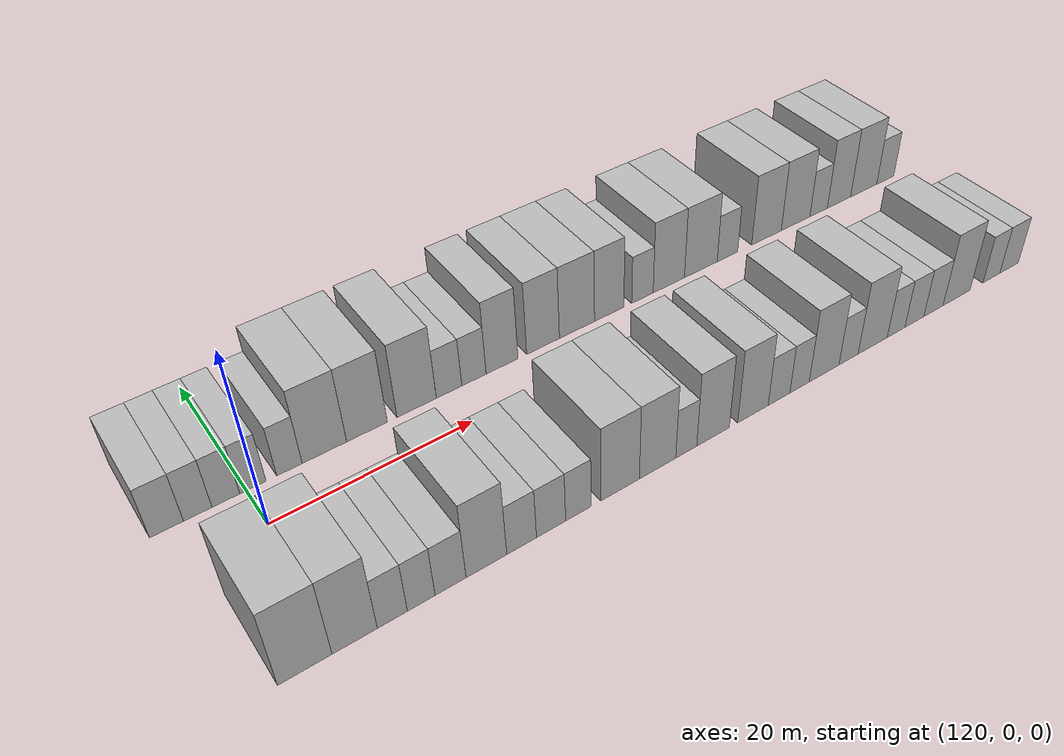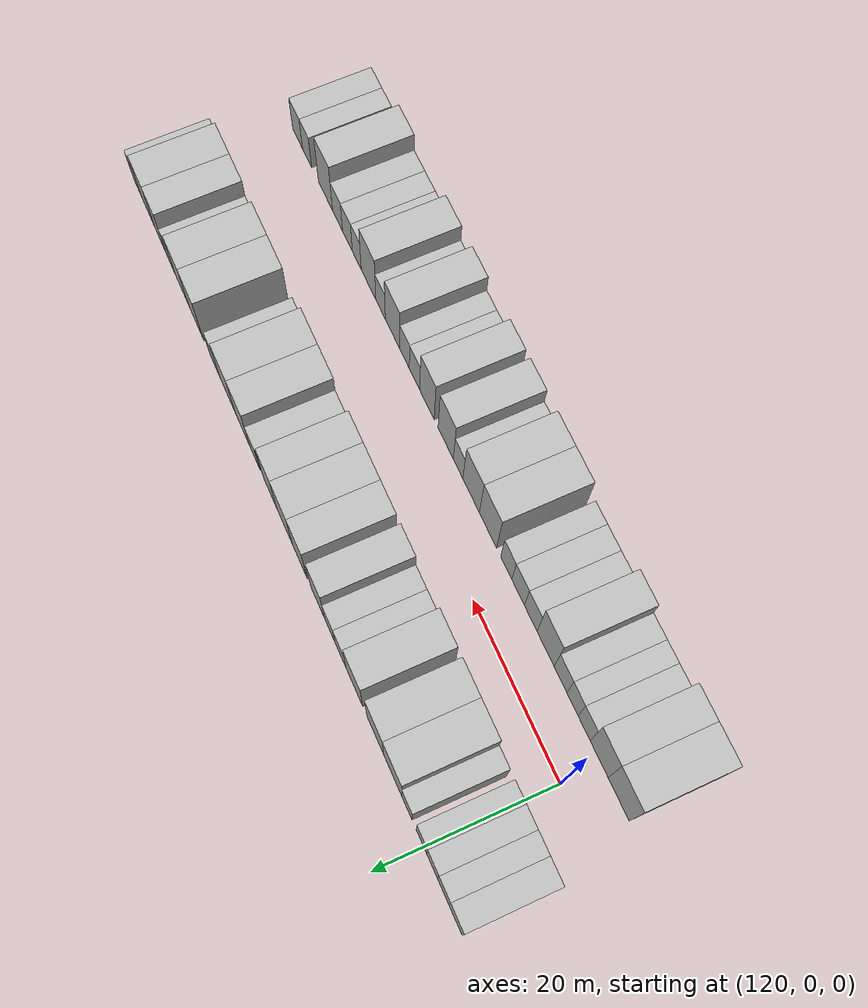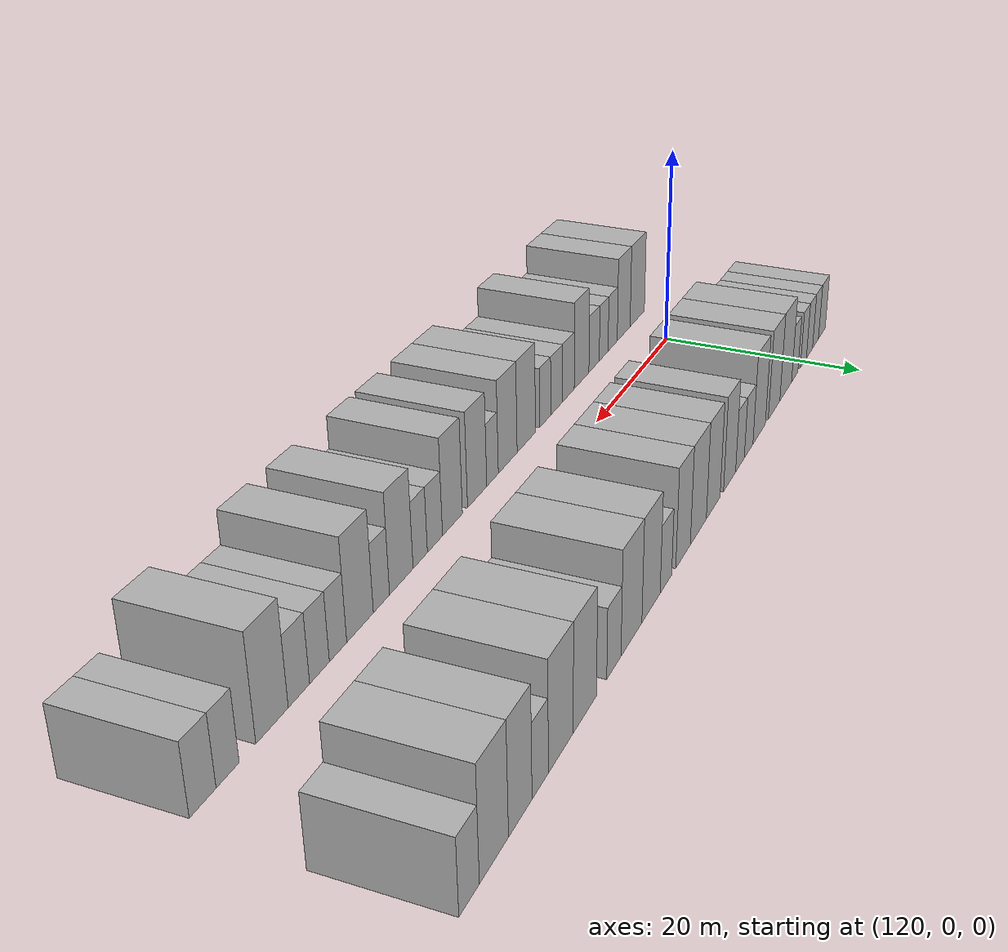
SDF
<sdf version="1.6">
 <world name="default">
  <model name="building_25">
   <static>1</static>
   <pose>112.8663 9.5000 0 0.000000 0.000000 1.570796</pose>
   <link name="link">
    <pose>0 0 3.00 0 0 0</pose>
    <collision name="collision"><geometry><box><size>10.0000 2.9402 6.0000</size></box></geometry></collision>
    <visual name="visual">
     <cast_shadows>0</cast_shadows>
     <geometry><box><size>10.0000 2.9402 6.0000</size></box></geometry>
     <material>
      <script>
       <uri>model://HANNAS_wall/materials/scripts</uri>
       <uri>model://HANNAS_wall/materials/textures</uri>
       <name>vrc/HANNAS_wall</name>
      </script>
     </material>
    </visual>
   </link>
  </model>
  <model name="building_26">
   <static>1</static>
   <pose>115.5956 9.5000 0 0.000000 0.000000 1.570796</pose>
   <link name="link">
    <pose>0 0 3.00 0 0 0</pose>
    <collision name="collision"><geometry><box><size>10.0000 2.5184 6.0000</size></box></geometry></collision>
    <visual name="visual">
     <cast_shadows>0</cast_shadows>
     <geometry><box><size>10.0000 2.5184 6.0000</size></box></geometry>
     <material>
      <script>
       <uri>model://HANNAS_wall/materials/scripts</uri>
       <uri>model://HANNAS_wall/materials/textures</uri>
       <name>vrc/HANNAS_wall</name>
      </script>
     </material>
    </visual>
   </link>
  </model>
  <model name="building_27">
   <static>1</static>
   <pose>118.1080 9.5000 0 0.000000 0.000000 1.570796</pose>
   <link name="link">
    <pose>0 0 3.00 0 0 0</pose>
    <collision name="collision"><geometry><box><size>10.0000 2.5065 6.0000</size></box></geometry></collision>
    <visual name="visual">
     <cast_shadows>0</cast_shadows>
     <geometry><box><size>10.0000 2.5065 6.0000</size></box></geometry>
     <material>
      <script>
       <uri>model://HANNAS_wall/materials/scripts</uri>
       <uri>model://HANNAS_wall/materials/textures</uri>
       <name>vrc/HANNAS_wall</name>
      </script>
     </material>
    </visual>
   </link>
  </model>
  <model name="building_28">
   <static>1</static>
   <pose>120.5743 9.5000 0 0.000000 0.000000 1.570796</pose>
   <link name="link">
    <pose>0 0 3.00 0 0 0</pose>
    <collision name="collision"><geometry><box><size>10.0000 2.4260 6.0000</size></box></geometry></collision>
    <visual name="visual">
     <cast_shadows>0</cast_shadows>
     <geometry><box><size>10.0000 2.4260 6.0000</size></box></geometry>
     <material>
      <script>
       <uri>model://HANNAS_wall/materials/scripts</uri>
       <uri>model://HANNAS_wall/materials/textures</uri>
       <name>vrc/HANNAS_wall</name>
      </script>
     </material>
    </visual>
   </link>
  </model>
  <model name="building_29">
   <static>1</static>
   <pose>123.9960 9.5000 0 0.000000 0.000000 1.570796</pose>
   <link name="link">
    <pose>0 0 3.00 0 0 0</pose>
    <collision name="collision"><geometry><box><size>10.0000 2.4174 6.0000</size></box></geometry></collision>
    <visual name="visual">
     <cast_shadows>0</cast_shadows>
     <geometry><box><size>10.0000 2.4174 6.0000</size></box></geometry>
     <material>
      <script>
       <uri>model://HANNAS_wall/materials/scripts</uri>
       <uri>model://HANNAS_wall/materials/textures</uri>
       <name>vrc/HANNAS_wall</name>
      </script>
     </material>
    </visual>
   </link>
  </model>
  <model name="building_30">
   <static>1</static>
   <pose>127.3766 9.5000 0 0.000000 0.000000 1.570796</pose>
   <link name="link">
    <pose>0 0 4.50 0 0 0</pose>
    <collision name="collision"><geometry><box><size>10.0000 4.3437 9.0000</size></box></geometry></collision>
    <visual name="visual">
     <cast_shadows>0</cast_shadows>
     <geometry><box><size>10.0000 4.3437 9.0000</size></box></geometry>
     <material>
      <script>
       <uri>model://HANNAS_wall/materials/scripts</uri>
       <uri>model://HANNAS_wall/materials/textures</uri>
       <name>vrc/HANNAS_wall</name>
      </script>
     </material>
    </visual>
   </link>
  </model>
  <model name="building_31">
   <static>1</static>
   <pose>131.6081 9.5000 0 0.000000 0.000000 1.570796</pose>
   <link name="link">
    <pose>0 0 4.50 0 0 0</pose>
    <collision name="collision"><geometry><box><size>10.0000 4.1194 9.0000</size></box></geometry></collision>
    <visual name="visual">
     <cast_shadows>0</cast_shadows>
     <geometry><box><size>10.0000 4.1194 9.0000</size></box></geometry>
     <material>
      <script>
       <uri>model://HANNAS_wall/materials/scripts</uri>
       <uri>model://HANNAS_wall/materials/textures</uri>
       <name>vrc/HANNAS_wall</name>
      </script>
     </material>
    </visual>
   </link>
  </model>
  <model name="building_32">
   <static>1</static>
   <pose>136.7439 9.5000 0 0.000000 0.000000 1.570796</pose>
   <link name="link">
    <pose>0 0 4.50 0 0 0</pose>
    <collision name="collision"><geometry><box><size>10.0000 4.1521 9.0000</size></box></geometry></collision>
    <visual name="visual">
     <cast_shadows>0</cast_shadows>
     <geometry><box><size>10.0000 4.1521 9.0000</size></box></geometry>
     <material>
      <script>
       <uri>model://HANNAS_wall/materials/scripts</uri>
       <uri>model://HANNAS_wall/materials/textures</uri>
       <name>vrc/HANNAS_wall</name>
      </script>
     </material>
    </visual>
   </link>
  </model>
  <model name="building_33">
   <static>1</static>
   <pose>140.2035 9.5000 0 0.000000 0.000000 1.570796</pose>
   <link name="link">
    <pose>0 0 3.00 0 0 0</pose>
    <collision name="collision"><geometry><box><size>10.0000 2.7670 6.0000</size></box></geometry></collision>
    <visual name="visual">
     <cast_shadows>0</cast_shadows>
     <geometry><box><size>10.0000 2.7670 6.0000</size></box></geometry>
     <material>
      <script>
       <uri>model://HANNAS_wall/materials/scripts</uri>
       <uri>model://HANNAS_wall/materials/textures</uri>
       <name>vrc/HANNAS_wall</name>
      </script>
     </material>
    </visual>
   </link>
  </model>
  <model name="building_34">
   <static>1</static>
   <pose>142.9331 9.5000 0 0.000000 0.000000 1.570796</pose>
   <link name="link">
    <pose>0 0 3.00 0 0 0</pose>
    <collision name="collision"><geometry><box><size>10.0000 2.6923 6.0000</size></box></geometry></collision>
    <visual name="visual">
     <cast_shadows>0</cast_shadows>
     <geometry><box><size>10.0000 2.6923 6.0000</size></box></geometry>
     <material>
      <script>
       <uri>model://HANNAS_wall/materials/scripts</uri>
       <uri>model://HANNAS_wall/materials/textures</uri>
       <name>vrc/HANNAS_wall</name>
      </script>
     </material>
    </visual>
   </link>
  </model>
  <model name="building_35">
   <static>1</static>
   <pose>146.0884 9.5000 0 0.000000 0.000000 1.570796</pose>
   <link name="link">
    <pose>0 0 4.50 0 0 0</pose>
    <collision name="collision"><geometry><box><size>10.0000 3.6184 9.0000</size></box></geometry></collision>
    <visual name="visual">
     <cast_shadows>0</cast_shadows>
     <geometry><box><size>10.0000 3.6184 9.0000</size></box></geometry>
     <material>
      <script>
       <uri>model://HANNAS_wall/materials/scripts</uri>
       <uri>model://HANNAS_wall/materials/textures</uri>
       <name>vrc/HANNAS_wall</name>
      </script>
     </material>
    </visual>
   </link>
  </model>
  <model name="building_36">
   <static>1</static>
   <pose>150.8325 9.5000 0 0.000000 0.000000 1.570796</pose>
   <link name="link">
    <pose>0 0 4.50 0 0 0</pose>
    <collision name="collision"><geometry><box><size>10.0000 3.8698 9.0000</size></box></geometry></collision>
    <visual name="visual">
     <cast_shadows>0</cast_shadows>
     <geometry><box><size>10.0000 3.8698 9.0000</size></box></geometry>
     <material>
      <script>
       <uri>model://HANNAS_wall/materials/scripts</uri>
       <uri>model://HANNAS_wall/materials/textures</uri>
       <name>vrc/HANNAS_wall</name>
      </script>
     </material>
    </visual>
   </link>
  </model>
  <model name="building_37">
   <static>1</static>
   <pose>154.8978 9.5000 0 0.000000 0.000000 1.570796</pose>
   <link name="link">
    <pose>0 0 4.50 0 0 0</pose>
    <collision name="collision"><geometry><box><size>10.0000 4.2608 9.0000</size></box></geometry></collision>
    <visual name="visual">
     <cast_shadows>0</cast_shadows>
     <geometry><box><size>10.0000 4.2608 9.0000</size></box></geometry>
     <material>
      <script>
       <uri>model://HANNAS_wall/materials/scripts</uri>
       <uri>model://HANNAS_wall/materials/textures</uri>
       <name>vrc/HANNAS_wall</name>
      </script>
     </material>
    </visual>
   </link>
  </model>
  <model name="building_38">
   <static>1</static>
   <pose>158.8710 9.5000 0 0.000000 0.000000 1.570796</pose>
   <link name="link">
    <pose>0 0 4.50 0 0 0</pose>
    <collision name="collision"><geometry><box><size>10.0000 3.6856 9.0000</size></box></geometry></collision>
    <visual name="visual">
     <cast_shadows>0</cast_shadows>
     <geometry><box><size>10.0000 3.6856 9.0000</size></box></geometry>
     <material>
      <script>
       <uri>model://HANNAS_wall/materials/scripts</uri>
       <uri>model://HANNAS_wall/materials/textures</uri>
       <name>vrc/HANNAS_wall</name>
      </script>
     </material>
    </visual>
   </link>
  </model>
  <model name="building_39">
   <static>1</static>
   <pose>163.0970 9.5000 0 0.000000 0.000000 1.570796</pose>
   <link name="link">
    <pose>0 0 3.00 0 0 0</pose>
    <collision name="collision"><geometry><box><size>10.0000 2.7663 6.0000</size></box></geometry></collision>
    <visual name="visual">
     <cast_shadows>0</cast_shadows>
     <geometry><box><size>10.0000 2.7663 6.0000</size></box></geometry>
     <material>
      <script>
       <uri>model://HANNAS_wall/materials/scripts</uri>
       <uri>model://HANNAS_wall/materials/textures</uri>
       <name>vrc/HANNAS_wall</name>
      </script>
     </material>
    </visual>
   </link>
  </model>
  <model name="building_40">
   <static>1</static>
   <pose>166.5538 9.5000 0 0.000000 0.000000 1.570796</pose>
   <link name="link">
    <pose>0 0 4.50 0 0 0</pose>
    <collision name="collision"><geometry><box><size>10.0000 4.1472 9.0000</size></box></geometry></collision>
    <visual name="visual">
     <cast_shadows>0</cast_shadows>
     <geometry><box><size>10.0000 4.1472 9.0000</size></box></geometry>
     <material>
      <script>
       <uri>model://HANNAS_wall/materials/scripts</uri>
       <uri>model://HANNAS_wall/materials/textures</uri>
       <name>vrc/HANNAS_wall</name>
      </script>
     </material>
    </visual>
   </link>
  </model>
  <model name="building_41">
   <static>1</static>
   <pose>170.8617 9.5000 0 0.000000 0.000000 1.570796</pose>
   <link name="link">
    <pose>0 0 4.50 0 0 0</pose>
    <collision name="collision"><geometry><box><size>10.0000 4.4686 9.0000</size></box></geometry></collision>
    <visual name="visual">
     <cast_shadows>0</cast_shadows>
     <geometry><box><size>10.0000 4.4686 9.0000</size></box></geometry>
     <material>
      <script>
       <uri>model://HANNAS_wall/materials/scripts</uri>
       <uri>model://HANNAS_wall/materials/textures</uri>
       <name>vrc/HANNAS_wall</name>
      </script>
     </material>
    </visual>
   </link>
  </model>
  <model name="building_42">
   <static>1</static>
   <pose>174.5383 9.5000 0 0.000000 0.000000 1.570796</pose>
   <link name="link">
    <pose>0 0 3.00 0 0 0</pose>
    <collision name="collision"><geometry><box><size>10.0000 2.8847 6.0000</size></box></geometry></collision>
    <visual name="visual">
     <cast_shadows>0</cast_shadows>
     <geometry><box><size>10.0000 2.8847 6.0000</size></box></geometry>
     <material>
      <script>
       <uri>model://HANNAS_wall/materials/scripts</uri>
       <uri>model://HANNAS_wall/materials/textures</uri>
       <name>vrc/HANNAS_wall</name>
      </script>
     </material>
    </visual>
   </link>
  </model>
  <model name="building_43">
   <static>1</static>
   <pose>180.1375 9.5000 0 0.000000 0.000000 1.570796</pose>
   <link name="link">
    <pose>0 0 4.50 0 0 0</pose>
    <collision name="collision"><geometry><box><size>10.0000 4.3137 9.0000</size></box></geometry></collision>
    <visual name="visual">
     <cast_shadows>0</cast_shadows>
     <geometry><box><size>10.0000 4.3137 9.0000</size></box></geometry>
     <material>
      <script>
       <uri>model://HANNAS_wall/materials/scripts</uri>
       <uri>model://HANNAS_wall/materials/textures</uri>
       <name>vrc/HANNAS_wall</name>
      </script>
     </material>
    </visual>
   </link>
  </model>
  <model name="building_44">
   <static>1</static>
   <pose>184.4437 9.5000 0 0.000000 0.000000 1.570796</pose>
   <link name="link">
    <pose>0 0 4.50 0 0 0</pose>
    <collision name="collision"><geometry><box><size>10.0000 4.2988 9.0000</size></box></geometry></collision>
    <visual name="visual">
     <cast_shadows>0</cast_shadows>
     <geometry><box><size>10.0000 4.2988 9.0000</size></box></geometry>
     <material>
      <script>
       <uri>model://HANNAS_wall/materials/scripts</uri>
       <uri>model://HANNAS_wall/materials/textures</uri>
       <name>vrc/HANNAS_wall</name>
      </script>
     </material>
    </visual>
   </link>
  </model>
  <model name="building_45">
   <static>1</static>
   <pose>187.9334 9.5000 0 0.000000 0.000000 1.570796</pose>
   <link name="link">
    <pose>0 0 3.00 0 0 0</pose>
    <collision name="collision"><geometry><box><size>10.0000 2.6806 6.0000</size></box></geometry></collision>
    <visual name="visual">
     <cast_shadows>0</cast_shadows>
     <geometry><box><size>10.0000 2.6806 6.0000</size></box></geometry>
     <material>
      <script>
       <uri>model://HANNAS_wall/materials/scripts</uri>
       <uri>model://HANNAS_wall/materials/textures</uri>
       <name>vrc/HANNAS_wall</name>
      </script>
     </material>
    </visual>
   </link>
  </model>
  <model name="building_46">
   <static>1</static>
   <pose>191.0996 9.5000 0 0.000000 0.000000 1.570796</pose>
   <link name="link">
    <pose>0 0 4.50 0 0 0</pose>
    <collision name="collision"><geometry><box><size>10.0000 3.6517 9.0000</size></box></geometry></collision>
    <visual name="visual">
     <cast_shadows>0</cast_shadows>
     <geometry><box><size>10.0000 3.6517 9.0000</size></box></geometry>
     <material>
      <script>
       <uri>model://HANNAS_wall/materials/scripts</uri>
       <uri>model://HANNAS_wall/materials/textures</uri>
       <name>vrc/HANNAS_wall</name>
      </script>
     </material>
    </visual>
   </link>
  </model>
  <model name="building_47">
   <static>1</static>
   <pose>195.0288 9.5000 0 0.000000 0.000000 1.570796</pose>
   <link name="link">
    <pose>0 0 4.50 0 0 0</pose>
    <collision name="collision"><geometry><box><size>10.0000 4.2066 9.0000</size></box></geometry></collision>
    <visual name="visual">
     <cast_shadows>0</cast_shadows>
     <geometry><box><size>10.0000 4.2066 9.0000</size></box></geometry>
     <material>
      <script>
       <uri>model://HANNAS_wall/materials/scripts</uri>
       <uri>model://HANNAS_wall/materials/textures</uri>
       <name>vrc/HANNAS_wall</name>
      </script>
     </material>
    </visual>
   </link>
  </model>
  <model name="building_48">
   <static>1</static>
   <pose>198.5337 9.5000 0 0.000000 0.000000 1.570796</pose>
   <link name="link">
    <pose>0 0 3.00 0 0 0</pose>
    <collision name="collision"><geometry><box><size>10.0000 2.8033 6.0000</size></box></geometry></collision>
    <visual name="visual">
     <cast_shadows>0</cast_shadows>
     <geometry><box><size>10.0000 2.8033 6.0000</size></box></geometry>
     <material>
      <script>
       <uri>model://HANNAS_wall/materials/scripts</uri>
       <uri>model://HANNAS_wall/materials/textures</uri>
       <name>vrc/HANNAS_wall</name>
      </script>
     </material>
    </visual>
   </link>
  </model>
  <model name="building_74">
   <static>1</static>
   <pose>116.4520 -9.5000 0 0.000000 0.000000 1.570796</pose>
   <link name="link">
    <pose>0 0 4.50 0 0 0</pose>
    <collision name="collision"><geometry><box><size>10.0000 4.4713 9.0000</size></box></geometry></collision>
    <visual name="visual">
     <cast_shadows>0</cast_shadows>
     <geometry><box><size>10.0000 4.4713 9.0000</size></box></geometry>
     <material>
      <script>
       <uri>model://HANNAS_wall/materials/scripts</uri>
       <uri>model://HANNAS_wall/materials/textures</uri>
       <name>vrc/HANNAS_wall</name>
      </script>
     </material>
    </visual>
   </link>
  </model>
  <model name="building_75">
   <static>1</static>
   <pose>120.6215 -9.5000 0 0.000000 0.000000 1.570796</pose>
   <link name="link">
    <pose>0 0 4.50 0 0 0</pose>
    <collision name="collision"><geometry><box><size>10.0000 3.8678 9.0000</size></box></geometry></collision>
    <visual name="visual">
     <cast_shadows>0</cast_shadows>
     <geometry><box><size>10.0000 3.8678 9.0000</size></box></geometry>
     <material>
      <script>
       <uri>model://HANNAS_wall/materials/scripts</uri>
       <uri>model://HANNAS_wall/materials/textures</uri>
       <name>vrc/HANNAS_wall</name>
      </script>
     </material>
    </visual>
   </link>
  </model>
  <model name="building_76">
   <static>1</static>
   <pose>123.8800 -9.5000 0 0.000000 0.000000 1.570796</pose>
   <link name="link">
    <pose>0 0 3.00 0 0 0</pose>
    <collision name="collision"><geometry><box><size>10.0000 2.6493 6.0000</size></box></geometry></collision>
    <visual name="visual">
     <cast_shadows>0</cast_shadows>
     <geometry><box><size>10.0000 2.6493 6.0000</size></box></geometry>
     <material>
      <script>
       <uri>model://HANNAS_wall/materials/scripts</uri>
       <uri>model://HANNAS_wall/materials/textures</uri>
       <name>vrc/HANNAS_wall</name>
      </script>
     </material>
    </visual>
   </link>
  </model>
  <model name="building_77">
   <static>1</static>
   <pose>126.4538 -9.5000 0 0.000000 0.000000 1.570796</pose>
   <link name="link">
    <pose>0 0 3.00 0 0 0</pose>
    <collision name="collision"><geometry><box><size>10.0000 2.4983 6.0000</size></box></geometry></collision>
    <visual name="visual">
     <cast_shadows>0</cast_shadows>
     <geometry><box><size>10.0000 2.4983 6.0000</size></box></geometry>
     <material>
      <script>
       <uri>model://HANNAS_wall/materials/scripts</uri>
       <uri>model://HANNAS_wall/materials/textures</uri>
       <name>vrc/HANNAS_wall</name>
      </script>
     </material>
    </visual>
   </link>
  </model>
  <model name="building_78">
   <static>1</static>
   <pose>129.1369 -9.5000 0 0.000000 0.000000 1.570796</pose>
   <link name="link">
    <pose>0 0 3.00 0 0 0</pose>
    <collision name="collision"><geometry><box><size>10.0000 2.8678 6.0000</size></box></geometry></collision>
    <visual name="visual">
     <cast_shadows>0</cast_shadows>
     <geometry><box><size>10.0000 2.8678 6.0000</size></box></geometry>
     <material>
      <script>
       <uri>model://HANNAS_wall/materials/scripts</uri>
       <uri>model://HANNAS_wall/materials/textures</uri>
       <name>vrc/HANNAS_wall</name>
      </script>
     </material>
    </visual>
   </link>
  </model>
  <model name="building_79">
   <static>1</static>
   <pose>132.5157 -9.5000 0 0.000000 0.000000 1.570796</pose>
   <link name="link">
    <pose>0 0 4.50 0 0 0</pose>
    <collision name="collision"><geometry><box><size>10.0000 3.8898 9.0000</size></box></geometry></collision>
    <visual name="visual">
     <cast_shadows>0</cast_shadows>
     <geometry><box><size>10.0000 3.8898 9.0000</size></box></geometry>
     <material>
      <script>
       <uri>model://HANNAS_wall/materials/scripts</uri>
       <uri>model://HANNAS_wall/materials/textures</uri>
       <name>vrc/HANNAS_wall</name>
      </script>
     </material>
    </visual>
   </link>
  </model>
  <model name="building_80">
   <static>1</static>
   <pose>135.9223 -9.5000 0 0.000000 0.000000 1.570796</pose>
   <link name="link">
    <pose>0 0 3.00 0 0 0</pose>
    <collision name="collision"><geometry><box><size>10.0000 2.9233 6.0000</size></box></geometry></collision>
    <visual name="visual">
     <cast_shadows>0</cast_shadows>
     <geometry><box><size>10.0000 2.9233 6.0000</size></box></geometry>
     <material>
      <script>
       <uri>model://HANNAS_wall/materials/scripts</uri>
       <uri>model://HANNAS_wall/materials/textures</uri>
       <name>vrc/HANNAS_wall</name>
      </script>
     </material>
    </visual>
   </link>
  </model>
  <model name="building_81">
   <static>1</static>
   <pose>138.8621 -9.5000 0 0.000000 0.000000 1.570796</pose>
   <link name="link">
    <pose>0 0 3.00 0 0 0</pose>
    <collision name="collision"><geometry><box><size>10.0000 2.9564 6.0000</size></box></geometry></collision>
    <visual name="visual">
     <cast_shadows>0</cast_shadows>
     <geometry><box><size>10.0000 2.9564 6.0000</size></box></geometry>
     <material>
      <script>
       <uri>model://HANNAS_wall/materials/scripts</uri>
       <uri>model://HANNAS_wall/materials/textures</uri>
       <name>vrc/HANNAS_wall</name>
      </script>
     </material>
    </visual>
   </link>
  </model>
  <model name="building_82">
   <static>1</static>
   <pose>141.6635 -9.5000 0 0.000000 0.000000 1.570796</pose>
   <link name="link">
    <pose>0 0 3.00 0 0 0</pose>
    <collision name="collision"><geometry><box><size>10.0000 2.6464 6.0000</size></box></geometry></collision>
    <visual name="visual">
     <cast_shadows>0</cast_shadows>
     <geometry><box><size>10.0000 2.6464 6.0000</size></box></geometry>
     <material>
      <script>
       <uri>model://HANNAS_wall/materials/scripts</uri>
       <uri>model://HANNAS_wall/materials/textures</uri>
       <name>vrc/HANNAS_wall</name>
      </script>
     </material>
    </visual>
   </link>
  </model>
  <model name="building_83">
   <static>1</static>
   <pose>146.0692 -9.5000 0 0.000000 0.000000 1.570796</pose>
   <link name="link">
    <pose>0 0 4.50 0 0 0</pose>
    <collision name="collision"><geometry><box><size>10.0000 4.1650 9.0000</size></box></geometry></collision>
    <visual name="visual">
     <cast_shadows>0</cast_shadows>
     <geometry><box><size>10.0000 4.1650 9.0000</size></box></geometry>
     <material>
      <script>
       <uri>model://HANNAS_wall/materials/scripts</uri>
       <uri>model://HANNAS_wall/materials/textures</uri>
       <name>vrc/HANNAS_wall</name>
      </script>
     </material>
    </visual>
   </link>
  </model>
  <model name="building_84">
   <static>1</static>
   <pose>150.1838 -9.5000 0 0.000000 0.000000 1.570796</pose>
   <link name="link">
    <pose>0 0 4.50 0 0 0</pose>
    <collision name="collision"><geometry><box><size>10.0000 4.0643 9.0000</size></box></geometry></collision>
    <visual name="visual">
     <cast_shadows>0</cast_shadows>
     <geometry><box><size>10.0000 4.0643 9.0000</size></box></geometry>
     <material>
      <script>
       <uri>model://HANNAS_wall/materials/scripts</uri>
       <uri>model://HANNAS_wall/materials/textures</uri>
       <name>vrc/HANNAS_wall</name>
      </script>
     </material>
    </visual>
   </link>
  </model>
  <model name="building_85">
   <static>1</static>
   <pose>153.4200 -9.5000 0 0.000000 0.000000 1.570796</pose>
   <link name="link">
    <pose>0 0 3.00 0 0 0</pose>
    <collision name="collision"><geometry><box><size>10.0000 2.4080 6.0000</size></box></geometry></collision>
    <visual name="visual">
     <cast_shadows>0</cast_shadows>
     <geometry><box><size>10.0000 2.4080 6.0000</size></box></geometry>
     <material>
      <script>
       <uri>model://HANNAS_wall/materials/scripts</uri>
       <uri>model://HANNAS_wall/materials/textures</uri>
       <name>vrc/HANNAS_wall</name>
      </script>
     </material>
    </visual>
   </link>
  </model>
  <model name="building_86">
   <static>1</static>
   <pose>156.5462 -9.5000 0 0.000000 0.000000 1.570796</pose>
   <link name="link">
    <pose>0 0 4.50 0 0 0</pose>
    <collision name="collision"><geometry><box><size>10.0000 3.8445 9.0000</size></box></geometry></collision>
    <visual name="visual">
     <cast_shadows>0</cast_shadows>
     <geometry><box><size>10.0000 3.8445 9.0000</size></box></geometry>
     <material>
      <script>
       <uri>model://HANNAS_wall/materials/scripts</uri>
       <uri>model://HANNAS_wall/materials/textures</uri>
       <name>vrc/HANNAS_wall</name>
      </script>
     </material>
    </visual>
   </link>
  </model>
  <model name="building_87">
   <static>1</static>
   <pose>161.3371 -9.5000 0 0.000000 0.000000 1.570796</pose>
   <link name="link">
    <pose>0 0 4.50 0 0 0</pose>
    <collision name="collision"><geometry><box><size>10.0000 3.7374 9.0000</size></box></geometry></collision>
    <visual name="visual">
     <cast_shadows>0</cast_shadows>
     <geometry><box><size>10.0000 3.7374 9.0000</size></box></geometry>
     <material>
      <script>
       <uri>model://HANNAS_wall/materials/scripts</uri>
       <uri>model://HANNAS_wall/materials/textures</uri>
       <name>vrc/HANNAS_wall</name>
      </script>
     </material>
    </visual>
   </link>
  </model>
  <model name="building_88">
   <static>1</static>
   <pose>164.5683 -9.5000 0 0.000000 0.000000 1.570796</pose>
   <link name="link">
    <pose>0 0 3.00 0 0 0</pose>
    <collision name="collision"><geometry><box><size>10.0000 2.7251 6.0000</size></box></geometry></collision>
    <visual name="visual">
     <cast_shadows>0</cast_shadows>
     <geometry><box><size>10.0000 2.7251 6.0000</size></box></geometry>
     <material>
      <script>
       <uri>model://HANNAS_wall/materials/scripts</uri>
       <uri>model://HANNAS_wall/materials/textures</uri>
       <name>vrc/HANNAS_wall</name>
      </script>
     </material>
    </visual>
   </link>
  </model>
  <model name="building_89">
   <static>1</static>
   <pose>167.1736 -9.5000 0 0.000000 0.000000 1.570796</pose>
   <link name="link">
    <pose>0 0 3.00 0 0 0</pose>
    <collision name="collision"><geometry><box><size>10.0000 2.4854 6.0000</size></box></geometry></collision>
    <visual name="visual">
     <cast_shadows>0</cast_shadows>
     <geometry><box><size>10.0000 2.4854 6.0000</size></box></geometry>
     <material>
      <script>
       <uri>model://HANNAS_wall/materials/scripts</uri>
       <uri>model://HANNAS_wall/materials/textures</uri>
       <name>vrc/HANNAS_wall</name>
      </script>
     </material>
    </visual>
   </link>
  </model>
  <model name="building_90">
   <static>1</static>
   <pose>170.3753 -9.5000 0 0.000000 0.000000 1.570796</pose>
   <link name="link">
    <pose>0 0 4.50 0 0 0</pose>
    <collision name="collision"><geometry><box><size>10.0000 3.9180 9.0000</size></box></geometry></collision>
    <visual name="visual">
     <cast_shadows>0</cast_shadows>
     <geometry><box><size>10.0000 3.9180 9.0000</size></box></geometry>
     <material>
      <script>
       <uri>model://HANNAS_wall/materials/scripts</uri>
       <uri>model://HANNAS_wall/materials/textures</uri>
       <name>vrc/HANNAS_wall</name>
      </script>
     </material>
    </visual>
   </link>
  </model>
  <model name="building_91">
   <static>1</static>
   <pose>173.6244 -9.5000 0 0.000000 0.000000 1.570796</pose>
   <link name="link">
    <pose>0 0 3.00 0 0 0</pose>
    <collision name="collision"><geometry><box><size>10.0000 2.5802 6.0000</size></box></geometry></collision>
    <visual name="visual">
     <cast_shadows>0</cast_shadows>
     <geometry><box><size>10.0000 2.5802 6.0000</size></box></geometry>
     <material>
      <script>
       <uri>model://HANNAS_wall/materials/scripts</uri>
       <uri>model://HANNAS_wall/materials/textures</uri>
       <name>vrc/HANNAS_wall</name>
      </script>
     </material>
    </visual>
   </link>
  </model>
  <model name="building_92">
   <static>1</static>
   <pose>176.9363 -9.5000 0 0.000000 0.000000 1.570796</pose>
   <link name="link">
    <pose>0 0 4.50 0 0 0</pose>
    <collision name="collision"><geometry><box><size>10.0000 4.0437 9.0000</size></box></geometry></collision>
    <visual name="visual">
     <cast_shadows>0</cast_shadows>
     <geometry><box><size>10.0000 4.0437 9.0000</size></box></geometry>
     <material>
      <script>
       <uri>model://HANNAS_wall/materials/scripts</uri>
       <uri>model://HANNAS_wall/materials/textures</uri>
       <name>vrc/HANNAS_wall</name>
      </script>
     </material>
    </visual>
   </link>
  </model>
  <model name="building_93">
   <static>1</static>
   <pose>180.2130 -9.5000 0 0.000000 0.000000 1.570796</pose>
   <link name="link">
    <pose>0 0 3.00 0 0 0</pose>
    <collision name="collision"><geometry><box><size>10.0000 2.5096 6.0000</size></box></geometry></collision>
    <visual name="visual">
     <cast_shadows>0</cast_shadows>
     <geometry><box><size>10.0000 2.5096 6.0000</size></box></geometry>
     <material>
      <script>
       <uri>model://HANNAS_wall/materials/scripts</uri>
       <uri>model://HANNAS_wall/materials/textures</uri>
       <name>vrc/HANNAS_wall</name>
      </script>
     </material>
    </visual>
   </link>
  </model>
  <model name="building_94">
   <static>1</static>
   <pose>182.8416 -9.5000 0 0.000000 0.000000 1.570796</pose>
   <link name="link">
    <pose>0 0 3.00 0 0 0</pose>
    <collision name="collision"><geometry><box><size>10.0000 2.7477 6.0000</size></box></geometry></collision>
    <visual name="visual">
     <cast_shadows>0</cast_shadows>
     <geometry><box><size>10.0000 2.7477 6.0000</size></box></geometry>
     <material>
      <script>
       <uri>model://HANNAS_wall/materials/scripts</uri>
       <uri>model://HANNAS_wall/materials/textures</uri>
       <name>vrc/HANNAS_wall</name>
      </script>
     </material>
    </visual>
   </link>
  </model>
  <model name="building_95">
   <static>1</static>
   <pose>185.6385 -9.5000 0 0.000000 0.000000 1.570796</pose>
   <link name="link">
    <pose>0 0 3.00 0 0 0</pose>
    <collision name="collision"><geometry><box><size>10.0000 2.8461 6.0000</size></box></geometry></collision>
    <visual name="visual">
     <cast_shadows>0</cast_shadows>
     <geometry><box><size>10.0000 2.8461 6.0000</size></box></geometry>
     <material>
      <script>
       <uri>model://HANNAS_wall/materials/scripts</uri>
       <uri>model://HANNAS_wall/materials/textures</uri>
       <name>vrc/HANNAS_wall</name>
      </script>
     </material>
    </visual>
   </link>
  </model>
  <model name="building_96">
   <static>1</static>
   <pose>189.1107 -9.5000 0 0.000000 0.000000 1.570796</pose>
   <link name="link">
    <pose>0 0 4.50 0 0 0</pose>
    <collision name="collision"><geometry><box><size>10.0000 4.0984 9.0000</size></box></geometry></collision>
    <visual name="visual">
     <cast_shadows>0</cast_shadows>
     <geometry><box><size>10.0000 4.0984 9.0000</size></box></geometry>
     <material>
      <script>
       <uri>model://HANNAS_wall/materials/scripts</uri>
       <uri>model://HANNAS_wall/materials/textures</uri>
       <name>vrc/HANNAS_wall</name>
      </script>
     </material>
    </visual>
   </link>
  </model>
  <model name="building_97">
   <static>1</static>
   <pose>194.4929 -9.5000 0 0.000000 0.000000 1.570796</pose>
   <link name="link">
    <pose>0 0 3.00 0 0 0</pose>
    <collision name="collision"><geometry><box><size>10.0000 2.6660 6.0000</size></box></geometry></collision>
    <visual name="visual">
     <cast_shadows>0</cast_shadows>
     <geometry><box><size>10.0000 2.6660 6.0000</size></box></geometry>
     <material>
      <script>
       <uri>model://HANNAS_wall/materials/scripts</uri>
       <uri>model://HANNAS_wall/materials/textures</uri>
       <name>vrc/HANNAS_wall</name>
      </script>
     </material>
    </visual>
   </link>
  </model>
  <model name="building_98">
   <static>1</static>
   <pose>197.3100 -9.5000 0 0.000000 0.000000 1.570796</pose>
   <link name="link">
    <pose>0 0 3.00 0 0 0</pose>
    <collision name="collision"><geometry><box><size>10.0000 2.9682 6.0000</size></box></geometry></collision>
    <visual name="visual">
     <cast_shadows>0</cast_shadows>
     <geometry><box><size>10.0000 2.9682 6.0000</size></box></geometry>
     <material>
      <script>
       <uri>model://HANNAS_wall/materials/scripts</uri>
       <uri>model://HANNAS_wall/materials/textures</uri>
       <name>vrc/HANNAS_wall</name>
      </script>
     </material>
    </visual>
   </link>
  </model>
 </world>
</sdf>
